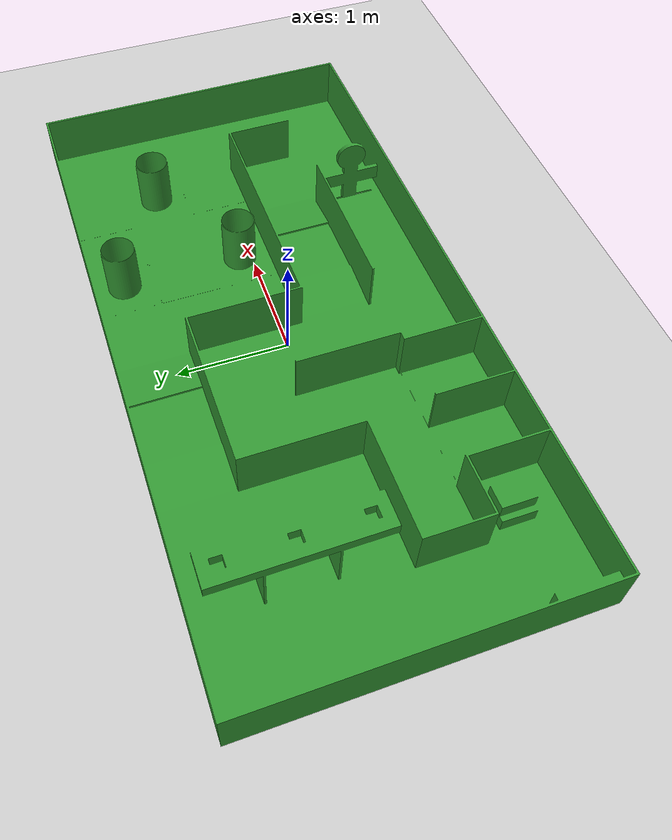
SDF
<?xml version="1.0" ?>
<sdf version="1.8">
  <world name="competition_world">

    <physics name="1ms" type="ignored">
      <max_step_size>0.001</max_step_size>
      <real_time_factor>1.0</real_time_factor>
    </physics>

    <plugin filename="gz-sim-physics-system" name="gz::sim::systems::Physics"/>
    <plugin filename="gz-sim-sensors-system" name="gz::sim::systems::Sensors">
      <render_engine>ogre</render_engine>
    </plugin>
    <plugin filename="gz-sim-user-commands-system" name="gz::sim::systems::UserCommands"/>
    <plugin filename="gz-sim-scene-broadcaster-system" name="gz::sim::systems::SceneBroadcaster"/>

    <light type="directional" name="sun">
      <cast_shadows>true</cast_shadows>
      <pose>0 0 10 0 0 0</pose>
      <diffuse>0.8 0.8 0.8 1</diffuse>
      <specular>0.2 0.2 0.2 1</specular>
      <attenuation>
        <range>1000</range>
        <constant>0.9</constant>
        <linear>0.01</linear>
        <quadratic>0.001</quadratic>
      </attenuation>
      <direction>-0.5 0.1 -0.9</direction>
    </light>

    <model name="ground_plane">
      <static>true</static>
      <link name="link">
        <collision name="collision">
          <geometry>
            <plane>
              <normal>0 0 1</normal>
            </plane>
          </geometry>
        </collision>
        <visual name="visual">
          <geometry>
            <plane>
              <normal>0 0 1</normal>
              <size>20 20</size>
            </plane>
          </geometry>
          <material>
            <ambient>0.8 0.8 0.8 1</ambient>
          </material>
        </visual>
      </link>
    </model>

    <!-- SPAWN YOUR GAMEFIELD -->
    <include>
      <uri>model://gamefield</uri>
      <pose>0 0 0 0 0 0</pose> <!-- This places the center of the maze at the center of the world -->
    </include>

  </world>
</sdf>

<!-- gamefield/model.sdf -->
<sdf version="1.9">
  <model name="gamefield">
    <static>true</static>
    <link name="link">
      <pose>0.135886 6.443587 0.789877 0 0 0</pose>
      <collision name="collision">
        <geometry>
          <mesh>
            <uri>model://gamefield/meshes/Gamefield_scaled.stl</uri>
          </mesh>
        </geometry>
         <surface>
          <friction>
            <ode>
              <mu>1.0</mu> <!-- Adds wheel grip friction -->
              <mu2>1.0</mu2>
            </ode>
          </friction>
        </surface>
      </collision>

      <visual name="visual">
        <geometry>
          <mesh>
            <uri>model://gamefield/meshes/Gamefield.stl</uri>
            <scale>0.001 0.001 0.001</scale>
          </mesh>
        </geometry>
        <material>
          <ambient>0.2 0.6 0.2 1</ambient>
          <diffuse>0.2 0.6 0.2 1</diffuse>
          <specular>0.1 0.1 0.1 1</specular>
        </material>
      </visual>
    </link>
  </model>
</sdf>
